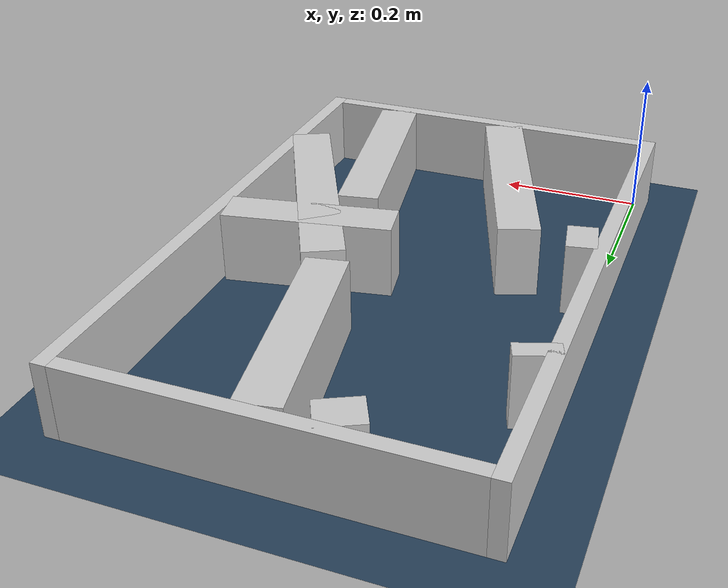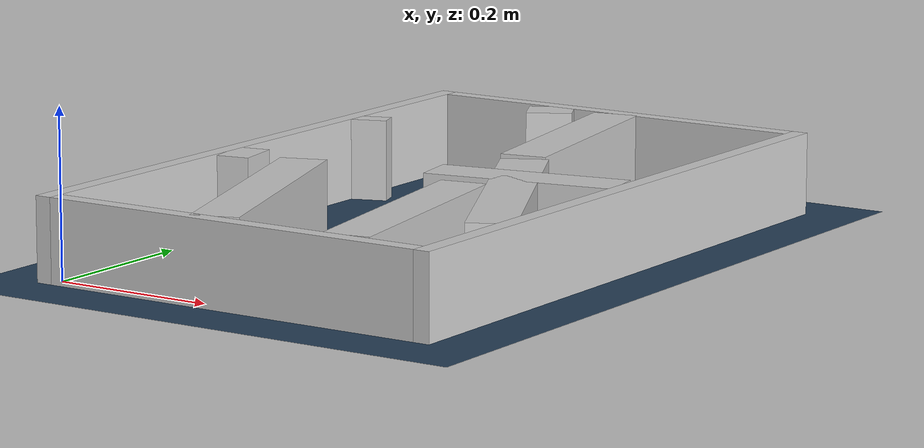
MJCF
<?xml version="1.0" ?>
<mujoco model="generated_real_template">
  <compiler angle="degree"/>
  <option timestep="0.002" integrator="implicitfast" iterations="100" cone="elliptic"/>
  <default>
    <geom density="1"/>
  </default>
  <asset>
    <texture builtin="gradient" height="3072" rgb1="0.3 0.5 0.7" rgb2="0 0 0" type="skybox" width="512"/>
    <texture builtin="checker" height="300" mark="edge" markrgb="0.8 0.8 0.8" name="groundplane" rgb1="0.2 0.3 0.4" rgb2="0.1 0.2 0.3" type="2d" width="300"/>
    <material name="groundplane" reflectance="0.2" texrepeat="5 5" texture="groundplane" texuniform="true"/>
  </asset>
  <worldbody>
    <light dir="0 0 -1" directional="true" pos="0 0 1.5"/>
    <geom name="floor" type="plane" condim="4" friction="0.5 0.005 0.001" material="groundplane" size="0 0 0.05"/>
    <body name="walls">
      <geom name="wall_boundary_left" type="box" condim="4" friction="1.0 0.005 0.0001" rgba="0.8 0.8 0.8 1" pos="-0.010000 0.387500 0.050000" euler="0 0 0.000000" size="0.010000 0.407500 0.050000"/>
      <geom name="wall_boundary_right" type="box" condim="4" friction="1.0 0.005 0.0001" rgba="0.8 0.8 0.8 1" pos="0.500000 0.387500 0.050000" euler="0 0 0.000000" size="0.010000 0.407500 0.050000"/>
      <geom name="wall_boundary_bottom" type="box" condim="4" friction="1.0 0.005 0.0001" rgba="0.8 0.8 0.8 1" pos="0.245000 -0.010000 0.050000" euler="0 0 0.000000" size="0.245000 0.010000 0.050000"/>
      <geom name="wall_boundary_top" type="box" condim="4" friction="1.0 0.005 0.0001" rgba="0.8 0.8 0.8 1" pos="0.245000 0.785000 0.050000" euler="0 0 0.000000" size="0.245000 0.010000 0.050000"/>
      <geom name="wall_inner_1_1" type="box" condim="4" friction="1.0 0.005 0.0001" rgba="0.8 0.8 0.8 1" pos="0.011052 0.579353 0.050000" euler="0 0 -70.679340" size="0.012561 0.028500 0.050000"/>
      <geom name="wall_inner_1_2" type="box" condim="4" friction="1.0 0.005 0.0001" rgba="0.8 0.8 0.8 1" pos="0.157595 0.161373 0.050000" euler="0 0 -70.679340" size="0.171004 0.028500 0.050000"/>
      <geom name="wall_inner_2_1" type="box" condim="4" friction="1.0 0.005 0.0001" rgba="0.8 0.8 0.8 1" pos="0.020025 0.313625 0.050000" euler="0 0 10.090908" size="0.020339 0.028500 0.050000"/>
      <geom name="wall_inner_2_2" type="box" condim="4" friction="1.0 0.005 0.0001" rgba="0.8 0.8 0.8 1" pos="0.375525 0.376891 0.050000" euler="0 0 10.090908" size="0.116273 0.028500 0.050000"/>
      <geom name="wall_inner_3_1" type="box" condim="4" friction="1.0 0.005 0.0001" rgba="0.8 0.8 0.8 1" pos="0.361411 0.155703 0.050000" euler="0 0 100.105433" size="0.158156 0.028500 0.050000"/>
      <geom name="wall_inner_3_2" type="box" condim="4" friction="1.0 0.005 0.0001" rgba="0.8 0.8 0.8 1" pos="0.277167 0.628383 0.050000" euler="0 0 100.105433" size="0.148928 0.028500 0.050000"/>
      <geom name="wall_inner_4_1" type="box" condim="4" friction="1.0 0.005 0.0001" rgba="0.8 0.8 0.8 1" pos="0.168599 0.754517 0.050000" euler="0 0 -62.930793" size="0.023003 0.028500 0.050000"/>
      <geom name="wall_inner_4_2" type="box" condim="4" friction="1.0 0.005 0.0001" rgba="0.8 0.8 0.8 1" pos="0.400472 0.300795 0.050000" euler="0 0 -62.930793" size="0.184915 0.028500 0.050000"/>
    </body>
  </worldbody>
</mujoco>
